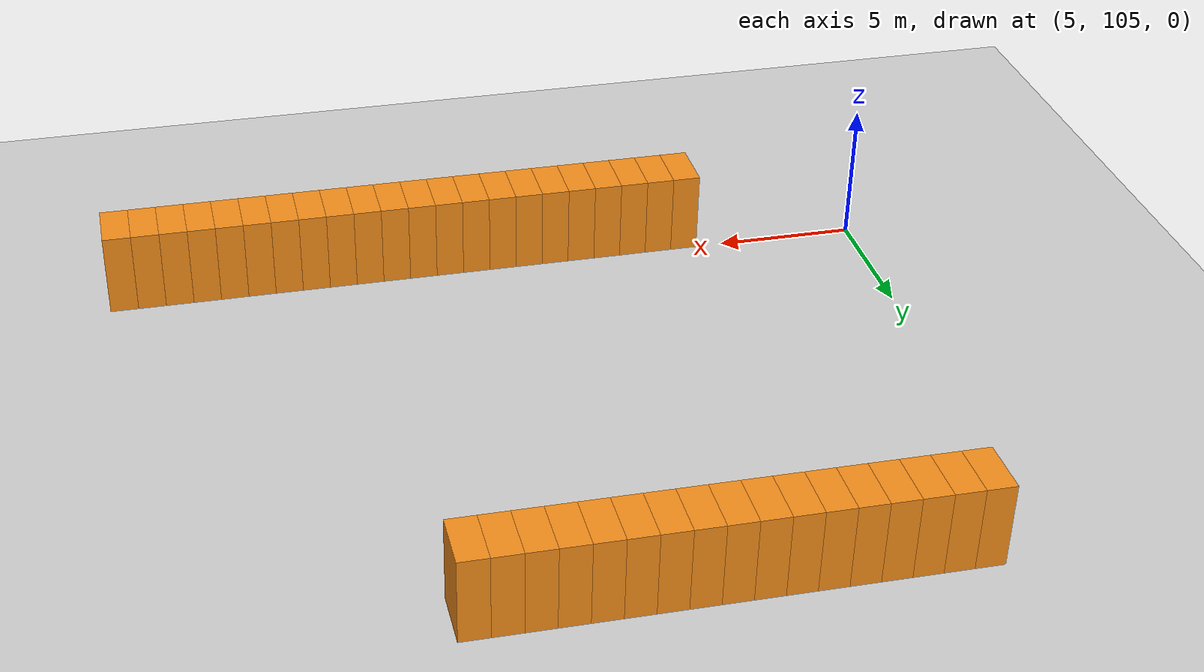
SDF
<sdf version="1.6">
 <world name="default">
  <include><uri>model://ground_plane</uri></include>
  <model name="unit_box_010">
   <pose>7.50   124.00     1.50 0 0 0</pose>
   <static>1</static>
   <link name="link">
    <inertial>
     <mass>5000</mass>
     <inertia><ixx>200</ixx><ixy>0</ixy><ixz>0</ixz><iyy>200</iyy><iyz>0</iyz><izz>200</izz></inertia>
    </inertial>
    <collision name="collision"><geometry><box><size>1 2 3</size></box></geometry></collision>
    <visual name="visual">
     <geometry><box><size>1 2 3</size></box></geometry>
     <material>
      <script><name>Gazebo/Orange</name><uri>file://media/materials/scripts/gazebo.material</uri></script>
     </material>
    </visual>
   </link>
  </model>
  <model name="unit_box_023">
   <pose>8.50   124.00     1.50 0 0 0</pose>
   <static>1</static>
   <link name="link">
    <inertial>
     <mass>5000</mass>
     <inertia><ixx>200</ixx><ixy>0</ixy><ixz>0</ixz><iyy>200</iyy><iyz>0</iyz><izz>200</izz></inertia>
    </inertial>
    <collision name="collision"><geometry><box><size>1 2 3</size></box></geometry></collision>
    <visual name="visual">
     <geometry><box><size>1 2 3</size></box></geometry>
     <material>
      <script><name>Gazebo/Orange</name><uri>file://media/materials/scripts/gazebo.material</uri></script>
     </material>
    </visual>
   </link>
  </model>
  <model name="unit_box_036">
   <pose>9.50   124.00     1.50 0 0 0</pose>
   <static>1</static>
   <link name="link">
    <inertial>
     <mass>5000</mass>
     <inertia><ixx>200</ixx><ixy>0</ixy><ixz>0</ixz><iyy>200</iyy><iyz>0</iyz><izz>200</izz></inertia>
    </inertial>
    <collision name="collision"><geometry><box><size>1 2 3</size></box></geometry></collision>
    <visual name="visual">
     <geometry><box><size>1 2 3</size></box></geometry>
     <material>
      <script><name>Gazebo/Orange</name><uri>file://media/materials/scripts/gazebo.material</uri></script>
     </material>
    </visual>
   </link>
  </model>
  <model name="unit_box_049">
   <pose>10.50   124.00     1.50 0 0 0</pose>
   <static>1</static>
   <link name="link">
    <inertial>
     <mass>5000</mass>
     <inertia><ixx>200</ixx><ixy>0</ixy><ixz>0</ixz><iyy>200</iyy><iyz>0</iyz><izz>200</izz></inertia>
    </inertial>
    <collision name="collision"><geometry><box><size>1 2 3</size></box></geometry></collision>
    <visual name="visual">
     <geometry><box><size>1 2 3</size></box></geometry>
     <material>
      <script><name>Gazebo/Orange</name><uri>file://media/materials/scripts/gazebo.material</uri></script>
     </material>
    </visual>
   </link>
  </model>
  <model name="unit_box_061">
   <pose>11.50   104.00     1.50 0 0 0</pose>
   <static>1</static>
   <link name="link">
    <inertial>
     <mass>5000</mass>
     <inertia><ixx>200</ixx><ixy>0</ixy><ixz>0</ixz><iyy>200</iyy><iyz>0</iyz><izz>200</izz></inertia>
    </inertial>
    <collision name="collision"><geometry><box><size>1 2 3</size></box></geometry></collision>
    <visual name="visual">
     <geometry><box><size>1 2 3</size></box></geometry>
     <material>
      <script><name>Gazebo/Orange</name><uri>file://media/materials/scripts/gazebo.material</uri></script>
     </material>
    </visual>
   </link>
  </model>
  <model name="unit_box_062">
   <pose>11.50   124.00     1.50 0 0 0</pose>
   <static>1</static>
   <link name="link">
    <inertial>
     <mass>5000</mass>
     <inertia><ixx>200</ixx><ixy>0</ixy><ixz>0</ixz><iyy>200</iyy><iyz>0</iyz><izz>200</izz></inertia>
    </inertial>
    <collision name="collision"><geometry><box><size>1 2 3</size></box></geometry></collision>
    <visual name="visual">
     <geometry><box><size>1 2 3</size></box></geometry>
     <material>
      <script><name>Gazebo/Orange</name><uri>file://media/materials/scripts/gazebo.material</uri></script>
     </material>
    </visual>
   </link>
  </model>
  <model name="unit_box_074">
   <pose>12.50   104.00     1.50 0 0 0</pose>
   <static>1</static>
   <link name="link">
    <inertial>
     <mass>5000</mass>
     <inertia><ixx>200</ixx><ixy>0</ixy><ixz>0</ixz><iyy>200</iyy><iyz>0</iyz><izz>200</izz></inertia>
    </inertial>
    <collision name="collision"><geometry><box><size>1 2 3</size></box></geometry></collision>
    <visual name="visual">
     <geometry><box><size>1 2 3</size></box></geometry>
     <material>
      <script><name>Gazebo/Orange</name><uri>file://media/materials/scripts/gazebo.material</uri></script>
     </material>
    </visual>
   </link>
  </model>
  <model name="unit_box_075">
   <pose>12.50   124.00     1.50 0 0 0</pose>
   <static>1</static>
   <link name="link">
    <inertial>
     <mass>5000</mass>
     <inertia><ixx>200</ixx><ixy>0</ixy><ixz>0</ixz><iyy>200</iyy><iyz>0</iyz><izz>200</izz></inertia>
    </inertial>
    <collision name="collision"><geometry><box><size>1 2 3</size></box></geometry></collision>
    <visual name="visual">
     <geometry><box><size>1 2 3</size></box></geometry>
     <material>
      <script><name>Gazebo/Orange</name><uri>file://media/materials/scripts/gazebo.material</uri></script>
     </material>
    </visual>
   </link>
  </model>
  <model name="unit_box_087">
   <pose>13.50   104.00     1.50 0 0 0</pose>
   <static>1</static>
   <link name="link">
    <inertial>
     <mass>5000</mass>
     <inertia><ixx>200</ixx><ixy>0</ixy><ixz>0</ixz><iyy>200</iyy><iyz>0</iyz><izz>200</izz></inertia>
    </inertial>
    <collision name="collision"><geometry><box><size>1 2 3</size></box></geometry></collision>
    <visual name="visual">
     <geometry><box><size>1 2 3</size></box></geometry>
     <material>
      <script><name>Gazebo/Orange</name><uri>file://media/materials/scripts/gazebo.material</uri></script>
     </material>
    </visual>
   </link>
  </model>
  <model name="unit_box_088">
   <pose>13.50   124.00     1.50 0 0 0</pose>
   <static>1</static>
   <link name="link">
    <inertial>
     <mass>5000</mass>
     <inertia><ixx>200</ixx><ixy>0</ixy><ixz>0</ixz><iyy>200</iyy><iyz>0</iyz><izz>200</izz></inertia>
    </inertial>
    <collision name="collision"><geometry><box><size>1 2 3</size></box></geometry></collision>
    <visual name="visual">
     <geometry><box><size>1 2 3</size></box></geometry>
     <material>
      <script><name>Gazebo/Orange</name><uri>file://media/materials/scripts/gazebo.material</uri></script>
     </material>
    </visual>
   </link>
  </model>
  <model name="unit_box_100">
   <pose>14.50   104.00     1.50 0 0 0</pose>
   <static>1</static>
   <link name="link">
    <inertial>
     <mass>5000</mass>
     <inertia><ixx>200</ixx><ixy>0</ixy><ixz>0</ixz><iyy>200</iyy><iyz>0</iyz><izz>200</izz></inertia>
    </inertial>
    <collision name="collision"><geometry><box><size>1 2 3</size></box></geometry></collision>
    <visual name="visual">
     <geometry><box><size>1 2 3</size></box></geometry>
     <material>
      <script><name>Gazebo/Orange</name><uri>file://media/materials/scripts/gazebo.material</uri></script>
     </material>
    </visual>
   </link>
  </model>
  <model name="unit_box_101">
   <pose>14.50   124.00     1.50 0 0 0</pose>
   <static>1</static>
   <link name="link">
    <inertial>
     <mass>5000</mass>
     <inertia><ixx>200</ixx><ixy>0</ixy><ixz>0</ixz><iyy>200</iyy><iyz>0</iyz><izz>200</izz></inertia>
    </inertial>
    <collision name="collision"><geometry><box><size>1 2 3</size></box></geometry></collision>
    <visual name="visual">
     <geometry><box><size>1 2 3</size></box></geometry>
     <material>
      <script><name>Gazebo/Orange</name><uri>file://media/materials/scripts/gazebo.material</uri></script>
     </material>
    </visual>
   </link>
  </model>
  <model name="unit_box_113">
   <pose>15.50   104.00     1.50 0 0 0</pose>
   <static>1</static>
   <link name="link">
    <inertial>
     <mass>5000</mass>
     <inertia><ixx>200</ixx><ixy>0</ixy><ixz>0</ixz><iyy>200</iyy><iyz>0</iyz><izz>200</izz></inertia>
    </inertial>
    <collision name="collision"><geometry><box><size>1 2 3</size></box></geometry></collision>
    <visual name="visual">
     <geometry><box><size>1 2 3</size></box></geometry>
     <material>
      <script><name>Gazebo/Orange</name><uri>file://media/materials/scripts/gazebo.material</uri></script>
     </material>
    </visual>
   </link>
  </model>
  <model name="unit_box_114">
   <pose>15.50   124.00     1.50 0 0 0</pose>
   <static>1</static>
   <link name="link">
    <inertial>
     <mass>5000</mass>
     <inertia><ixx>200</ixx><ixy>0</ixy><ixz>0</ixz><iyy>200</iyy><iyz>0</iyz><izz>200</izz></inertia>
    </inertial>
    <collision name="collision"><geometry><box><size>1 2 3</size></box></geometry></collision>
    <visual name="visual">
     <geometry><box><size>1 2 3</size></box></geometry>
     <material>
      <script><name>Gazebo/Orange</name><uri>file://media/materials/scripts/gazebo.material</uri></script>
     </material>
    </visual>
   </link>
  </model>
  <model name="unit_box_126">
   <pose>16.50   104.00     1.50 0 0 0</pose>
   <static>1</static>
   <link name="link">
    <inertial>
     <mass>5000</mass>
     <inertia><ixx>200</ixx><ixy>0</ixy><ixz>0</ixz><iyy>200</iyy><iyz>0</iyz><izz>200</izz></inertia>
    </inertial>
    <collision name="collision"><geometry><box><size>1 2 3</size></box></geometry></collision>
    <visual name="visual">
     <geometry><box><size>1 2 3</size></box></geometry>
     <material>
      <script><name>Gazebo/Orange</name><uri>file://media/materials/scripts/gazebo.material</uri></script>
     </material>
    </visual>
   </link>
  </model>
  <model name="unit_box_127">
   <pose>16.50   124.00     1.50 0 0 0</pose>
   <static>1</static>
   <link name="link">
    <inertial>
     <mass>5000</mass>
     <inertia><ixx>200</ixx><ixy>0</ixy><ixz>0</ixz><iyy>200</iyy><iyz>0</iyz><izz>200</izz></inertia>
    </inertial>
    <collision name="collision"><geometry><box><size>1 2 3</size></box></geometry></collision>
    <visual name="visual">
     <geometry><box><size>1 2 3</size></box></geometry>
     <material>
      <script><name>Gazebo/Orange</name><uri>file://media/materials/scripts/gazebo.material</uri></script>
     </material>
    </visual>
   </link>
  </model>
  <model name="unit_box_139">
   <pose>17.50   104.00     1.50 0 0 0</pose>
   <static>1</static>
   <link name="link">
    <inertial>
     <mass>5000</mass>
     <inertia><ixx>200</ixx><ixy>0</ixy><ixz>0</ixz><iyy>200</iyy><iyz>0</iyz><izz>200</izz></inertia>
    </inertial>
    <collision name="collision"><geometry><box><size>1 2 3</size></box></geometry></collision>
    <visual name="visual">
     <geometry><box><size>1 2 3</size></box></geometry>
     <material>
      <script><name>Gazebo/Orange</name><uri>file://media/materials/scripts/gazebo.material</uri></script>
     </material>
    </visual>
   </link>
  </model>
  <model name="unit_box_140">
   <pose>17.50   124.00     1.50 0 0 0</pose>
   <static>1</static>
   <link name="link">
    <inertial>
     <mass>5000</mass>
     <inertia><ixx>200</ixx><ixy>0</ixy><ixz>0</ixz><iyy>200</iyy><iyz>0</iyz><izz>200</izz></inertia>
    </inertial>
    <collision name="collision"><geometry><box><size>1 2 3</size></box></geometry></collision>
    <visual name="visual">
     <geometry><box><size>1 2 3</size></box></geometry>
     <material>
      <script><name>Gazebo/Orange</name><uri>file://media/materials/scripts/gazebo.material</uri></script>
     </material>
    </visual>
   </link>
  </model>
  <model name="unit_box_152">
   <pose>18.50   104.00     1.50 0 0 0</pose>
   <static>1</static>
   <link name="link">
    <inertial>
     <mass>5000</mass>
     <inertia><ixx>200</ixx><ixy>0</ixy><ixz>0</ixz><iyy>200</iyy><iyz>0</iyz><izz>200</izz></inertia>
    </inertial>
    <collision name="collision"><geometry><box><size>1 2 3</size></box></geometry></collision>
    <visual name="visual">
     <geometry><box><size>1 2 3</size></box></geometry>
     <material>
      <script><name>Gazebo/Orange</name><uri>file://media/materials/scripts/gazebo.material</uri></script>
     </material>
    </visual>
   </link>
  </model>
  <model name="unit_box_153">
   <pose>18.50   124.00     1.50 0 0 0</pose>
   <static>1</static>
   <link name="link">
    <inertial>
     <mass>5000</mass>
     <inertia><ixx>200</ixx><ixy>0</ixy><ixz>0</ixz><iyy>200</iyy><iyz>0</iyz><izz>200</izz></inertia>
    </inertial>
    <collision name="collision"><geometry><box><size>1 2 3</size></box></geometry></collision>
    <visual name="visual">
     <geometry><box><size>1 2 3</size></box></geometry>
     <material>
      <script><name>Gazebo/Orange</name><uri>file://media/materials/scripts/gazebo.material</uri></script>
     </material>
    </visual>
   </link>
  </model>
  <model name="unit_box_165">
   <pose>19.50   104.00     1.50 0 0 0</pose>
   <static>1</static>
   <link name="link">
    <inertial>
     <mass>5000</mass>
     <inertia><ixx>200</ixx><ixy>0</ixy><ixz>0</ixz><iyy>200</iyy><iyz>0</iyz><izz>200</izz></inertia>
    </inertial>
    <collision name="collision"><geometry><box><size>1 2 3</size></box></geometry></collision>
    <visual name="visual">
     <geometry><box><size>1 2 3</size></box></geometry>
     <material>
      <script><name>Gazebo/Orange</name><uri>file://media/materials/scripts/gazebo.material</uri></script>
     </material>
    </visual>
   </link>
  </model>
  <model name="unit_box_166">
   <pose>19.50   124.00     1.50 0 0 0</pose>
   <static>1</static>
   <link name="link">
    <inertial>
     <mass>5000</mass>
     <inertia><ixx>200</ixx><ixy>0</ixy><ixz>0</ixz><iyy>200</iyy><iyz>0</iyz><izz>200</izz></inertia>
    </inertial>
    <collision name="collision"><geometry><box><size>1 2 3</size></box></geometry></collision>
    <visual name="visual">
     <geometry><box><size>1 2 3</size></box></geometry>
     <material>
      <script><name>Gazebo/Orange</name><uri>file://media/materials/scripts/gazebo.material</uri></script>
     </material>
    </visual>
   </link>
  </model>
  <model name="unit_box_178">
   <pose>20.50   104.00     1.50 0 0 0</pose>
   <static>1</static>
   <link name="link">
    <inertial>
     <mass>5000</mass>
     <inertia><ixx>200</ixx><ixy>0</ixy><ixz>0</ixz><iyy>200</iyy><iyz>0</iyz><izz>200</izz></inertia>
    </inertial>
    <collision name="collision"><geometry><box><size>1 2 3</size></box></geometry></collision>
    <visual name="visual">
     <geometry><box><size>1 2 3</size></box></geometry>
     <material>
      <script><name>Gazebo/Orange</name><uri>file://media/materials/scripts/gazebo.material</uri></script>
     </material>
    </visual>
   </link>
  </model>
  <model name="unit_box_179">
   <pose>20.50   124.00     1.50 0 0 0</pose>
   <static>1</static>
   <link name="link">
    <inertial>
     <mass>5000</mass>
     <inertia><ixx>200</ixx><ixy>0</ixy><ixz>0</ixz><iyy>200</iyy><iyz>0</iyz><izz>200</izz></inertia>
    </inertial>
    <collision name="collision"><geometry><box><size>1 2 3</size></box></geometry></collision>
    <visual name="visual">
     <geometry><box><size>1 2 3</size></box></geometry>
     <material>
      <script><name>Gazebo/Orange</name><uri>file://media/materials/scripts/gazebo.material</uri></script>
     </material>
    </visual>
   </link>
  </model>
  <model name="unit_box_191">
   <pose>21.50   104.00     1.50 0 0 0</pose>
   <static>1</static>
   <link name="link">
    <inertial>
     <mass>5000</mass>
     <inertia><ixx>200</ixx><ixy>0</ixy><ixz>0</ixz><iyy>200</iyy><iyz>0</iyz><izz>200</izz></inertia>
    </inertial>
    <collision name="collision"><geometry><box><size>1 2 3</size></box></geometry></collision>
    <visual name="visual">
     <geometry><box><size>1 2 3</size></box></geometry>
     <material>
      <script><name>Gazebo/Orange</name><uri>file://media/materials/scripts/gazebo.material</uri></script>
     </material>
    </visual>
   </link>
  </model>
  <model name="unit_box_192">
   <pose>21.50   124.00     1.50 0 0 0</pose>
   <static>1</static>
   <link name="link">
    <inertial>
     <mass>5000</mass>
     <inertia><ixx>200</ixx><ixy>0</ixy><ixz>0</ixz><iyy>200</iyy><iyz>0</iyz><izz>200</izz></inertia>
    </inertial>
    <collision name="collision"><geometry><box><size>1 2 3</size></box></geometry></collision>
    <visual name="visual">
     <geometry><box><size>1 2 3</size></box></geometry>
     <material>
      <script><name>Gazebo/Orange</name><uri>file://media/materials/scripts/gazebo.material</uri></script>
     </material>
    </visual>
   </link>
  </model>
  <model name="unit_box_204">
   <pose>22.50   104.00     1.50 0 0 0</pose>
   <static>1</static>
   <link name="link">
    <inertial>
     <mass>5000</mass>
     <inertia><ixx>200</ixx><ixy>0</ixy><ixz>0</ixz><iyy>200</iyy><iyz>0</iyz><izz>200</izz></inertia>
    </inertial>
    <collision name="collision"><geometry><box><size>1 2 3</size></box></geometry></collision>
    <visual name="visual">
     <geometry><box><size>1 2 3</size></box></geometry>
     <material>
      <script><name>Gazebo/Orange</name><uri>file://media/materials/scripts/gazebo.material</uri></script>
     </material>
    </visual>
   </link>
  </model>
  <model name="unit_box_205">
   <pose>22.50   124.00     1.50 0 0 0</pose>
   <static>1</static>
   <link name="link">
    <inertial>
     <mass>5000</mass>
     <inertia><ixx>200</ixx><ixy>0</ixy><ixz>0</ixz><iyy>200</iyy><iyz>0</iyz><izz>200</izz></inertia>
    </inertial>
    <collision name="collision"><geometry><box><size>1 2 3</size></box></geometry></collision>
    <visual name="visual">
     <geometry><box><size>1 2 3</size></box></geometry>
     <material>
      <script><name>Gazebo/Orange</name><uri>file://media/materials/scripts/gazebo.material</uri></script>
     </material>
    </visual>
   </link>
  </model>
  <model name="unit_box_217">
   <pose>23.50   104.00     1.50 0 0 0</pose>
   <static>1</static>
   <link name="link">
    <inertial>
     <mass>5000</mass>
     <inertia><ixx>200</ixx><ixy>0</ixy><ixz>0</ixz><iyy>200</iyy><iyz>0</iyz><izz>200</izz></inertia>
    </inertial>
    <collision name="collision"><geometry><box><size>1 2 3</size></box></geometry></collision>
    <visual name="visual">
     <geometry><box><size>1 2 3</size></box></geometry>
     <material>
      <script><name>Gazebo/Orange</name><uri>file://media/materials/scripts/gazebo.material</uri></script>
     </material>
    </visual>
   </link>
  </model>
  <model name="unit_box_218">
   <pose>23.50   124.00     1.50 0 0 0</pose>
   <static>1</static>
   <link name="link">
    <inertial>
     <mass>5000</mass>
     <inertia><ixx>200</ixx><ixy>0</ixy><ixz>0</ixz><iyy>200</iyy><iyz>0</iyz><izz>200</izz></inertia>
    </inertial>
    <collision name="collision"><geometry><box><size>1 2 3</size></box></geometry></collision>
    <visual name="visual">
     <geometry><box><size>1 2 3</size></box></geometry>
     <material>
      <script><name>Gazebo/Orange</name><uri>file://media/materials/scripts/gazebo.material</uri></script>
     </material>
    </visual>
   </link>
  </model>
  <model name="unit_box_230">
   <pose>24.50   104.00     1.50 0 0 0</pose>
   <static>1</static>
   <link name="link">
    <inertial>
     <mass>5000</mass>
     <inertia><ixx>200</ixx><ixy>0</ixy><ixz>0</ixz><iyy>200</iyy><iyz>0</iyz><izz>200</izz></inertia>
    </inertial>
    <collision name="collision"><geometry><box><size>1 2 3</size></box></geometry></collision>
    <visual name="visual">
     <geometry><box><size>1 2 3</size></box></geometry>
     <material>
      <script><name>Gazebo/Orange</name><uri>file://media/materials/scripts/gazebo.material</uri></script>
     </material>
    </visual>
   </link>
  </model>
  <model name="unit_box_243">
   <pose>25.50   104.00     1.50 0 0 0</pose>
   <static>1</static>
   <link name="link">
    <inertial>
     <mass>5000</mass>
     <inertia><ixx>200</ixx><ixy>0</ixy><ixz>0</ixz><iyy>200</iyy><iyz>0</iyz><izz>200</izz></inertia>
    </inertial>
    <collision name="collision"><geometry><box><size>1 2 3</size></box></geometry></collision>
    <visual name="visual">
     <geometry><box><size>1 2 3</size></box></geometry>
     <material>
      <script><name>Gazebo/Orange</name><uri>file://media/materials/scripts/gazebo.material</uri></script>
     </material>
    </visual>
   </link>
  </model>
  <model name="unit_box_256">
   <pose>26.50   104.00     1.50 0 0 0</pose>
   <static>1</static>
   <link name="link">
    <inertial>
     <mass>5000</mass>
     <inertia><ixx>200</ixx><ixy>0</ixy><ixz>0</ixz><iyy>200</iyy><iyz>0</iyz><izz>200</izz></inertia>
    </inertial>
    <collision name="collision"><geometry><box><size>1 2 3</size></box></geometry></collision>
    <visual name="visual">
     <geometry><box><size>1 2 3</size></box></geometry>
     <material>
      <script><name>Gazebo/Orange</name><uri>file://media/materials/scripts/gazebo.material</uri></script>
     </material>
    </visual>
   </link>
  </model>
  <model name="unit_box_269">
   <pose>27.50   104.00     1.50 0 0 0</pose>
   <static>1</static>
   <link name="link">
    <inertial>
     <mass>5000</mass>
     <inertia><ixx>200</ixx><ixy>0</ixy><ixz>0</ixz><iyy>200</iyy><iyz>0</iyz><izz>200</izz></inertia>
    </inertial>
    <collision name="collision"><geometry><box><size>1 2 3</size></box></geometry></collision>
    <visual name="visual">
     <geometry><box><size>1 2 3</size></box></geometry>
     <material>
      <script><name>Gazebo/Orange</name><uri>file://media/materials/scripts/gazebo.material</uri></script>
     </material>
    </visual>
   </link>
  </model>
  <model name="unit_box_282">
   <pose>28.50   104.00     1.50 0 0 0</pose>
   <static>1</static>
   <link name="link">
    <inertial>
     <mass>5000</mass>
     <inertia><ixx>200</ixx><ixy>0</ixy><ixz>0</ixz><iyy>200</iyy><iyz>0</iyz><izz>200</izz></inertia>
    </inertial>
    <collision name="collision"><geometry><box><size>1 2 3</size></box></geometry></collision>
    <visual name="visual">
     <geometry><box><size>1 2 3</size></box></geometry>
     <material>
      <script><name>Gazebo/Orange</name><uri>file://media/materials/scripts/gazebo.material</uri></script>
     </material>
    </visual>
   </link>
  </model>
  <model name="unit_box_295">
   <pose>29.50   104.00     1.50 0 0 0</pose>
   <static>1</static>
   <link name="link">
    <inertial>
     <mass>5000</mass>
     <inertia><ixx>200</ixx><ixy>0</ixy><ixz>0</ixz><iyy>200</iyy><iyz>0</iyz><izz>200</izz></inertia>
    </inertial>
    <collision name="collision"><geometry><box><size>1 2 3</size></box></geometry></collision>
    <visual name="visual">
     <geometry><box><size>1 2 3</size></box></geometry>
     <material>
      <script><name>Gazebo/Orange</name><uri>file://media/materials/scripts/gazebo.material</uri></script>
     </material>
    </visual>
   </link>
  </model>
  <model name="unit_box_308">
   <pose>30.50   104.00     1.50 0 0 0</pose>
   <static>1</static>
   <link name="link">
    <inertial>
     <mass>5000</mass>
     <inertia><ixx>200</ixx><ixy>0</ixy><ixz>0</ixz><iyy>200</iyy><iyz>0</iyz><izz>200</izz></inertia>
    </inertial>
    <collision name="collision"><geometry><box><size>1 2 3</size></box></geometry></collision>
    <visual name="visual">
     <geometry><box><size>1 2 3</size></box></geometry>
     <material>
      <script><name>Gazebo/Orange</name><uri>file://media/materials/scripts/gazebo.material</uri></script>
     </material>
    </visual>
   </link>
  </model>
  <model name="unit_box_321">
   <pose>31.50   104.00     1.50 0 0 0</pose>
   <static>1</static>
   <link name="link">
    <inertial>
     <mass>5000</mass>
     <inertia><ixx>200</ixx><ixy>0</ixy><ixz>0</ixz><iyy>200</iyy><iyz>0</iyz><izz>200</izz></inertia>
    </inertial>
    <collision name="collision"><geometry><box><size>1 2 3</size></box></geometry></collision>
    <visual name="visual">
     <geometry><box><size>1 2 3</size></box></geometry>
     <material>
      <script><name>Gazebo/Orange</name><uri>file://media/materials/scripts/gazebo.material</uri></script>
     </material>
    </visual>
   </link>
  </model>
  <model name="unit_box_334">
   <pose>32.50   104.00     1.50 0 0 0</pose>
   <static>1</static>
   <link name="link">
    <inertial>
     <mass>5000</mass>
     <inertia><ixx>200</ixx><ixy>0</ixy><ixz>0</ixz><iyy>200</iyy><iyz>0</iyz><izz>200</izz></inertia>
    </inertial>
    <collision name="collision"><geometry><box><size>1 2 3</size></box></geometry></collision>
    <visual name="visual">
     <geometry><box><size>1 2 3</size></box></geometry>
     <material>
      <script><name>Gazebo/Orange</name><uri>file://media/materials/scripts/gazebo.material</uri></script>
     </material>
    </visual>
   </link>
  </model>
 </world>
</sdf>
